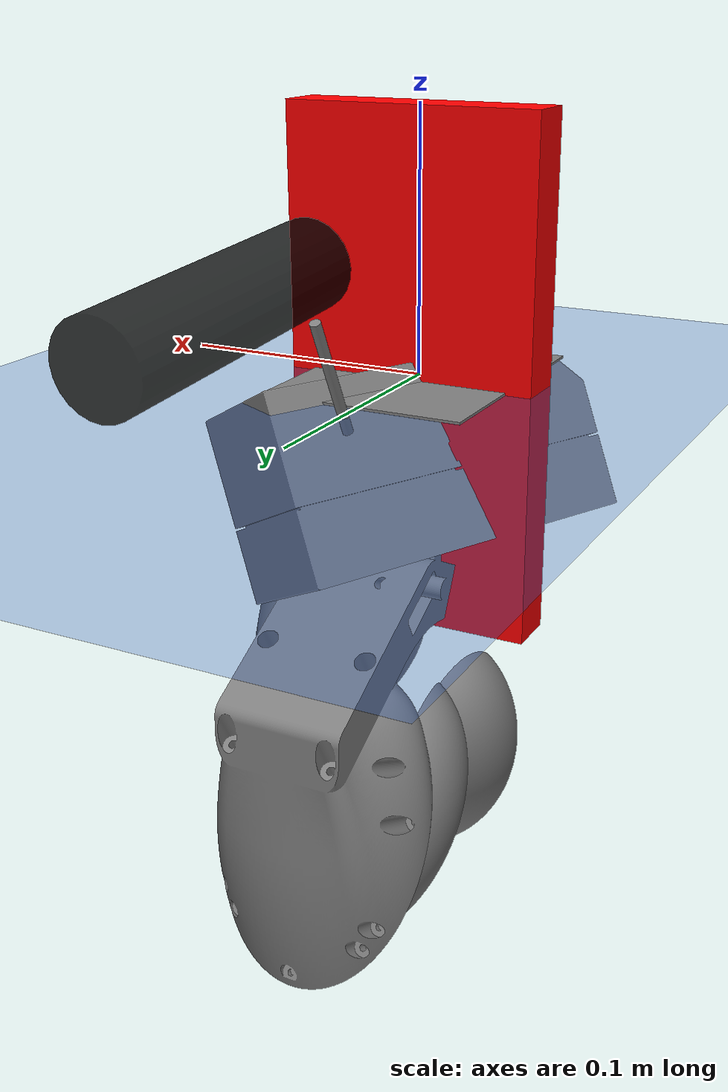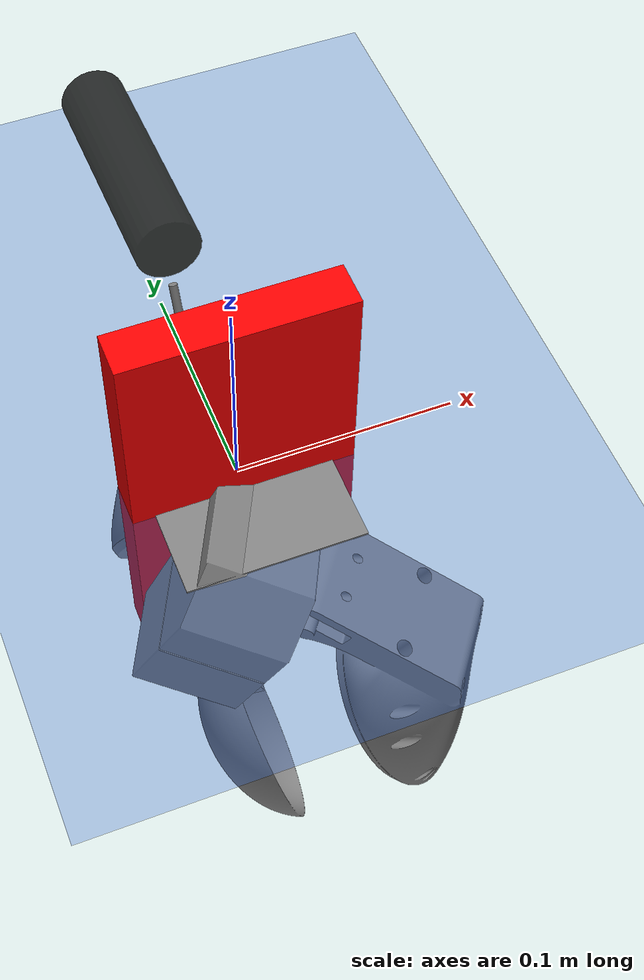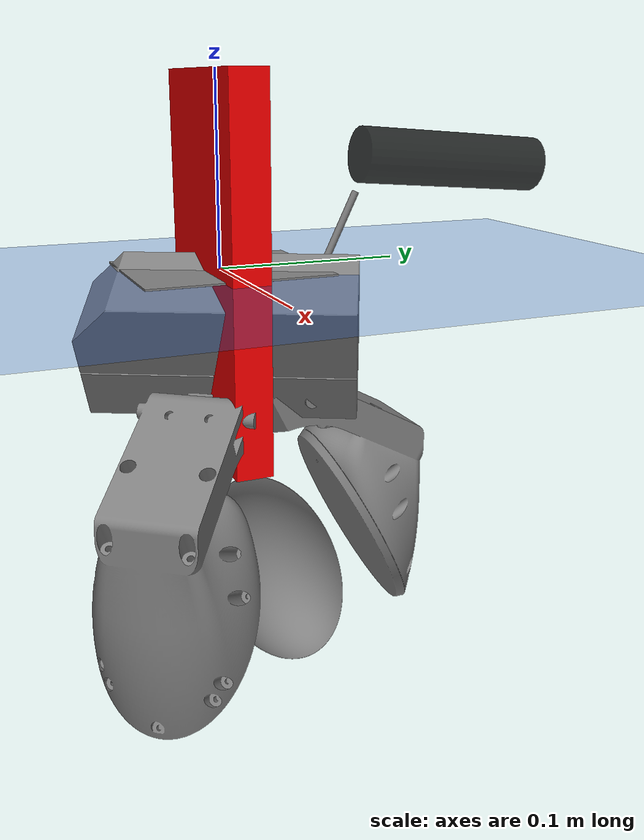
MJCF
<mujoco model="Free-Floating Grippers">
  <include file="../common.xml"/>

  <option timestep="0.001" cone="elliptic" noslip_iterations="5" integrator="implicit"/>
  <size memory="1M"/>

  <custom>
    <numeric name="agent_planner" data="2"/>
    <numeric name="agent_horizon" data="0.5" />
    <numeric name="agent_integrator" data="2" />
    <numeric name="agent_timestep" data="0.005" />
    <numeric name="agent_policy_width" data="0.0035" />
    <numeric name="sampling_trajectories" data="60"/>
    <numeric name="sampling_spline_points" data="5" />
    <numeric name="sampling_exploration" data="0.04" />
    <numeric name="robust_xfrc" data="0.015" />
    <numeric name="gradient_spline_points" data="6" />
  </custom>

  <statistic extent="0.7" center="0 0 0"/>

  <visual>
    <quality shadowsize="8192"/>
    <global azimuth="90" elevation="-30"/>
  </visual>

  <default>
    <default class="red_rgb_object/">
      <default class="red_rgb_object/visual">
        <geom contype="0" conaffinity="0" group="1" rgba="1 0 0 1" mass="0.001"/>
      </default>
      <default class="red_rgb_object/collision">
        <geom contype="1" conaffinity="1" condim="6" friction="0.2 0.005 0.0001" mass="0.2" solref="0.004 1"/>
      </default>
    </default>
  </default>

  <worldbody>
    <site name="world" group="5"/>
    <light pos="0   -1 1.5" dir=".5 .8 -1" diffuse="0.5 0.5 0.5" specular="0.3 0.3 0.3" castshadow="true" cutoff="30"/>
    <light pos="1.2 -1 1.5" dir="-.5 .8 -1" diffuse="0.5 0.5 0.5" specular="0.3 0.3 0.3" castshadow="true" cutoff="30"/>
    <geom name="floor" pos="0 0 0" size="0 0 0.05" type="plane" material="blue_grid"/>
    <body name="object">
      <freejoint name="red_rgb_object/"/>
      <geom name="object" class="red_rgb_object/collision" rgba="1 0 0 1" type="box" size="0.05 0.01 0.1" pos="0 0 0"/>
      <site name="0" pos="0.12 0 0" group="5"/>
      <site name="1" pos="0 .08 0" group="5"/>
      <site name="2" pos="0 0 0.08" group="5"/>
    </body>
    <body name="target" gravcomp="1">
      <freejoint/>
      <geom name="target" rgba=".5 .5 .7 1" type="box" size="0.039 0.008 0.09" contype="0" conaffinity="0"/>
      <site name="0t" pos="0.12 0 0" group="5"/>
      <site name="1t" pos="0 0.08 0" group="5"/>
      <site name="2t" pos="0 0 0.08" group="5"/>
    </body>
  </worldbody>

  <contact>
    <exclude body1="object" body2="target"/>
  </contact>

  <sensor>
    <user name="Reach" dim="6" user="2 0.35 0 1 0.02"/>
    <user name="Bring" dim="3" user="6 1 0 5 0.05"/>
    <user name="Control" dim="6" user="6 .05 0 1 0.01"/>
    <framepos name="object" objtype="body" objname="object"/>
    <framepos name="0" objtype="site" objname="0"/>
    <framepos name="1" objtype="site" objname="1"/>
    <framepos name="2" objtype="site" objname="2"/>
    <framepos name="0t" objtype="site" objname="0t"/>
    <framepos name="1t" objtype="site" objname="1t"/>
    <framepos name="2t" objtype="site" objname="2t"/>
  </sensor>

  <include file="spatula.xml"/>
  <include file="schunk_wsg_50_hydro_bubble.xml"/>
</mujoco>

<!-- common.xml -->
<mujoco>

    <visual>
        <headlight ambient=".4 .4 .4" diffuse=".8 .8 .8" specular="0.1 0.1 0.1"/>
        <map znear=".01"/>
        <quality shadowsize="2048"/>
        <global elevation="-15"/>
    </visual>

    <asset>
        <texture name="blue_grid" type="2d" builtin="checker" rgb1=".02 .14 .44" rgb2=".27 .55 1" width="300" height="300" mark="edge" markrgb="1 1 1"/>
        <material name="blue_grid" texture="blue_grid" texrepeat="1 1" texuniform="true" reflectance=".2"/>

        <texture name="grey_grid" type="2d" builtin="checker" rgb1=".26 .26 .26" rgb2=".6 .6 .6" width="300" height="300" mark="edge" markrgb="1 1 1"/>
        <material name="grey_grid" texture="grey_grid" texrepeat="1 1" texuniform="true" reflectance=".2"/>
        <texture name="skybox" type="skybox" builtin="gradient" rgb1=".66 .79 1" rgb2=".9 .91 .93" width="800" height="800"/>

        <material name="self" rgba=".7 .5 .3 1"/>
        <material name="self_default" rgba=".7 .5 .3 1"/>
        <material name="self_highlight" rgba="0 .5 .3 1"/>
        <material name="effector" rgba=".7 .4 .2 1"/>
        <material name="effector_default" rgba=".7 .4 .2 1"/>
        <material name="effector_highlight" rgba="0 .5 .3 1"/>
        <material name="decoration" rgba=".2 .6 .3 1"/>
        <material name="eye" rgba="0 .2 1 1"/>
        <material name="target" rgba=".6 .3 .3 1"/>
        <material name="target_default" rgba=".6 .3 .3 1"/>
        <material name="target_highlight" rgba=".6 .3 .3 .4"/>
        <material name="site" rgba=".5 .5 .5 .3"/>
    </asset>

    <size memory="1M"/>

    <statistic extent="0.4" center="0.3 0.1 0"/>

    <visual>
        <quality shadowsize="8192"/>
        <global azimuth="180" elevation="-30"/>
    </visual>

    <default>
        <geom friction="1.0"/>
    </default>

    <compiler angle="radian" autolimits="true"/>

    <asset>
        <mesh name="apple" file="../../shared_assets/apple/apple.obj" />
        <mesh name="apple_contact0" file="../../shared_assets/apple/contact0.stl"  />
        <mesh name="apple_contact1" file="../../shared_assets/apple/contact1.stl"  />

        <mesh name="doorknob" file="../../shared_assets/doorknob/doorknob.obj" />

        <mesh name="flashlight" file="../../shared_assets/flashlight/flashlight.obj" />
        <mesh name="flashlight_contact0" file="../../shared_assets/flashlight/contact0.stl"  />
        <mesh name="flashlight_contact1" file="../../shared_assets/flashlight/contact1.stl"  />

        <mesh name="hammer" file="../../shared_assets/hammer/hammer.obj" />
        <mesh name="hammer_contact0" file="../../shared_assets/hammer/contact0.stl"  />
        <mesh name="hammer_contact1" file="../../shared_assets/hammer/contact1.stl"  />

        <mesh name="phone" file="../../shared_assets/phone/phone.obj" />
        <mesh name="phone_contact0" file="../../shared_assets/phone/contact0.stl"  />
        <mesh name="phone_contact1" file="../../shared_assets/phone/contact1.stl"  />
        <mesh name="phone_contact2" file="../../shared_assets/phone/contact2.stl"  />

        <mesh name="stapler" file="../../shared_assets/stapler/stapler.obj" />
        <mesh name="stapler_contact0" file="../../shared_assets/stapler/contact0.stl"  />
        <mesh name="stapler_contact1" file="../../shared_assets/stapler/contact1.stl"  />
        <mesh name="stapler_contact2" file="../../shared_assets/stapler/contact2.stl"  />
        <mesh name="stapler_contact3" file="../../shared_assets/stapler/contact3.stl"  />
        <mesh name="stapler_contact4" file="../../shared_assets/stapler/contact4.stl"  />

        <mesh name="waterbottle" file="../../shared_assets/waterbottle/waterbottle.obj" />
        <mesh name="waterbottle_contact0" file="../../shared_assets/waterbottle/contact0.stl"  />
        <mesh name="waterbottle_contact1" file="../../shared_assets/waterbottle/contact1.stl"  />
    </asset>

</mujoco>

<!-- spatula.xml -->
<mujoco model="spatula">
  <compiler eulerseq="XYZ"/>
  <asset>
    <material name="material_1" emission="0" specular="0" rgba="0 0 0 0.80000001192092896"/>
  </asset>
  <worldbody>
    <body name="spatula" pos="0 0 0" euler="0 -0 0">
      <inertial pos="0 0.115649 0.044470999999999997" mass="0.068000000000000005" fullinertia="0.21095403274864072 0.037108032886608931 0.18858265237650276 -4.264472553729218e-08 0 -0.069821697385502049"/>
      <geom name="spatula_handle_collision" type="cylinder" group="3" size="0.014999999999999999 0.055" friction="1 0.0050000000000000001 0.0001" pos="0 0.13500000000000001 0.051999999999999998" euler="114.59155902616463 -0 0"/>
      <geom name="spatula_connector" type="cylinder" group="0" size="0.002 0.024" pos="0 0.067500000000000004 0.014999999999999999" euler="-53.858032742297382 0 0"/>
      <geom name="spatula_bottom" type="box" group="0" size="0.040000000000000001 0.050000000000000003 0.00050000000000000001" pos="0 0 0" euler="0 -0 0"/>
      <geom name="spatula_handle_visual" type="cylinder" contype="0" conaffinity="0" group="0" size="0.014999999999999999 0.055" material="material_1" pos="0 0.13500000000000001 0.051999999999999998" euler="114.59155902616463 -0 0"/>
      <freejoint name="spatula_freejoint"/>
      <site name="spatula" pos="0 0 0"/>
    </body>
  </worldbody>

  <sensor>
    <framepos name="spatula" objtype="site" objname="spatula"/>
  </sensor>
</mujoco>

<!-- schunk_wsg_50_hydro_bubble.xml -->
<mujoco model="Schunk_Gripper">
  <compiler eulerseq="XYZ"/>
  <asset>
    <mesh name="wsg_body" file="wsg_body.stl" scale="1 1 1"/>
    <mesh name="ellipsoid_bubble_geometry" file="ellipsoid_bubble_geometry.stl" scale="0.001 0.001 0.001"/>
    <mesh name="bubble_finger" file="bubble_finger.stl" scale="0.001 0.001 0.001"/>
  </asset>
  <worldbody>
    <body name="gripper" pos="0 0 0" euler="0 -0 0">
      <inertial pos="0 0 0" mass="0.98888200000000004" fullinertia="0.162992 0.162992 0.16481399999999999 0 0 0"/>
      <geom name="gripper mesh" type="mesh" group="0" pos="0 0 -0.035999999999999997" euler="-90.000210459149713 -3.1805546814635168e-15 -90.000210459149713" mesh="wsg_body"/>
      <freejoint name="schunk_freejoint"/>
      <site name="gripper" pos="0 0 0"/>
      <body name="left_finger_bubble" pos="0 0 -0.072499999999999995" euler="0 -0 0">
        <inertial pos="0 0 0" mass="0.050000000000000003" fullinertia="0.16 0.16 0.16 0 0 0"/>
        <geom name="left_finger_ellipsoid" type="mesh" group="3" contype="0" conaffinity="0" friction="1 0.0050000000000000001 0.0001" pos="0 -0.041665000000000001 -0.1095" euler="0 -0 0" mesh="ellipsoid_bubble_geometry"/>
        <geom name="left_finger_visual_mesh" type="mesh" contype="0" conaffinity="0" group="0" pos="0 0 0" euler="90.000210459149713 -0 179.9998479605043" mesh="bubble_finger"/>
        <geom name="left_finger_bubble" type="mesh" group="0" pos="0 -0.029999999999999999 -0.1095" euler="-179.99999999913413 89.999789538302082 89.999789540949109" mesh="ellipsoid_bubble_geometry"/>
        <joint name="left_finger_sliding_joint" type="slide" pos="0 0 0" axis="0 1 0" limited="true" range="-0.055 0"/>
        <body name="left_finger" pos="0 0 -0.11750000000000001" euler="0 -0 0">
          <inertial pos="0 0 0" mass="0.050000000000000003" fullinertia="0.16 0.16 0.16 0 0 0"/>
        </body>
      </body>
      <body name="right_finger_bubble" pos="0 0 -0.072499999999999995" euler="0 -0 0">
        <inertial pos="0 0 0" mass="0.050000000000000003" fullinertia="0.16 0.16 0.16 0 0 0"/>
        <geom name="right_finger_ellipsoid" type="mesh" group="3" contype="0" conaffinity="0" friction="1 0.0050000000000000001 0.0001" pos="0 0.041665000000000001 -0.1095" euler="0 -0 0" mesh="bubble_finger"/>
        <geom name="right_finger_visual_mesh" type="mesh" contype="0" conaffinity="0" group="0" pos="0 0 0" euler="90.000210459149713 -0 0" mesh="bubble_finger"/>
        <geom name="right_finger_bubble" type="mesh" group="0" pos="0 0.029999999999999999 -0.1095" euler="179.99999999913413 89.999789538302082 -89.999789540949109" mesh="ellipsoid_bubble_geometry"/>
        <joint name="right_finger_sliding_joint" type="slide" pos="0 0 0" axis="0 1 0" limited="true" range="0 0.055"/>
        <body name="right_finger" pos="0 0 -0.11750000000000001" euler="0 -0 0">
          <inertial pos="0 0 0" mass="0.050000000000000003" fullinertia="0.16 0.16 0.16 0 0 0"/>
        </body>
      </body>
    </body>
  </worldbody>

  <actuator>
    <position name="left_motor" joint="left_finger_sliding_joint" kp="1" kv="0" ctrllimited="true" ctrlrange="-1 1"/>
    <position name="right_motor" joint="right_finger_sliding_joint" kp="1" kv="0" ctrllimited="true" ctrlrange="-1 1"/>
  </actuator>

  <sensor>
    <framepos name="gripper" objtype="site" objname="gripper"/>
  </sensor>
</mujoco>
